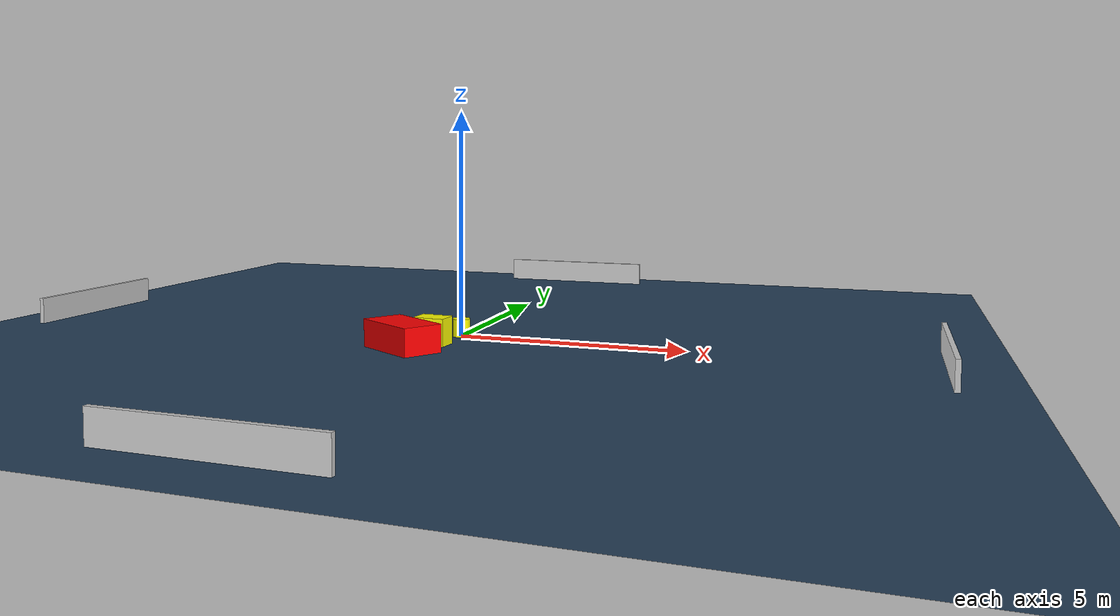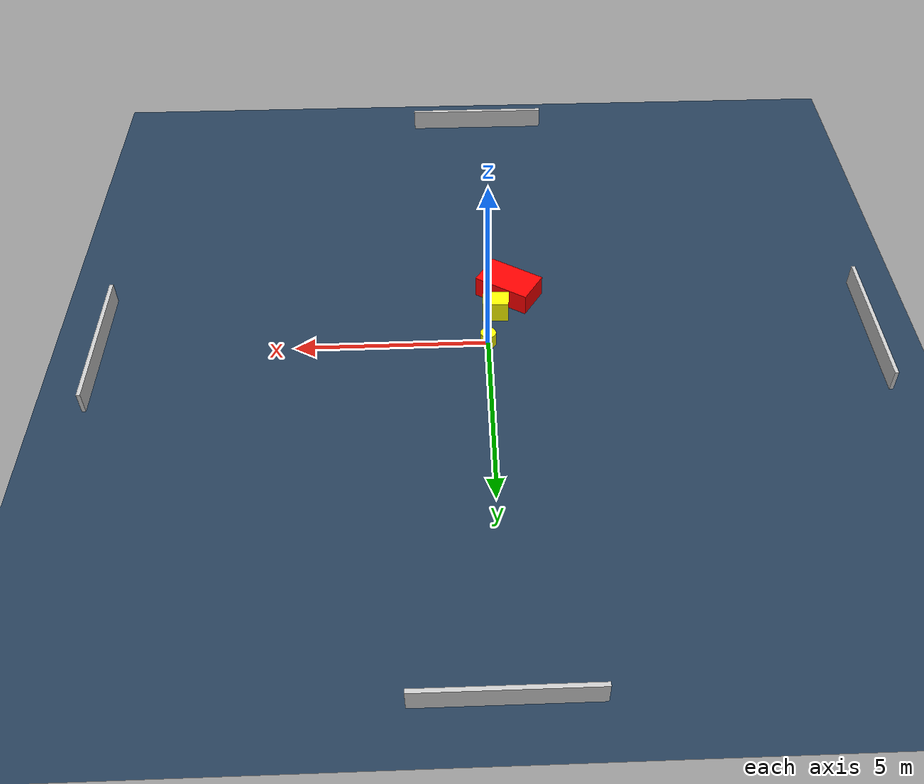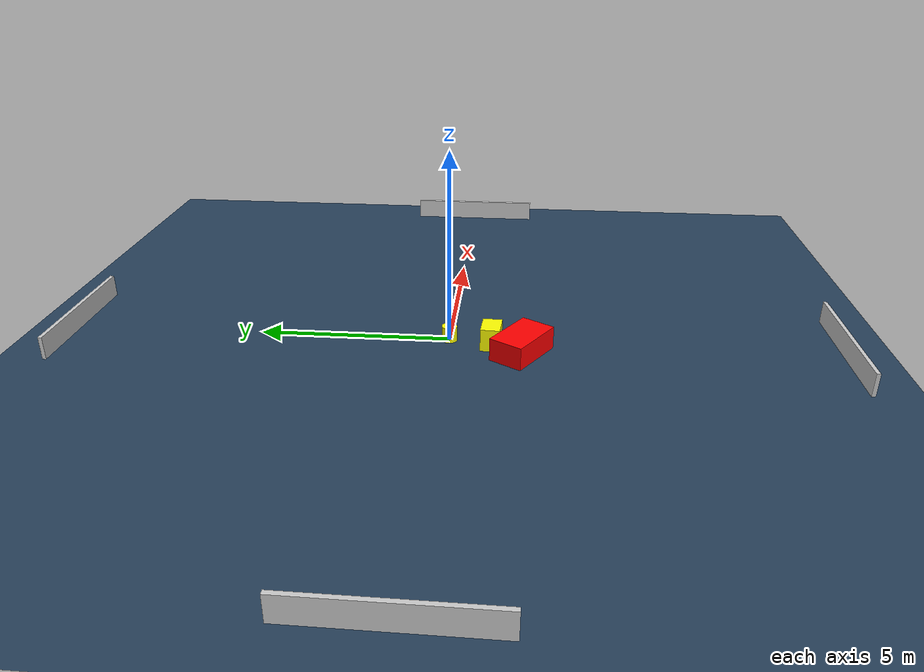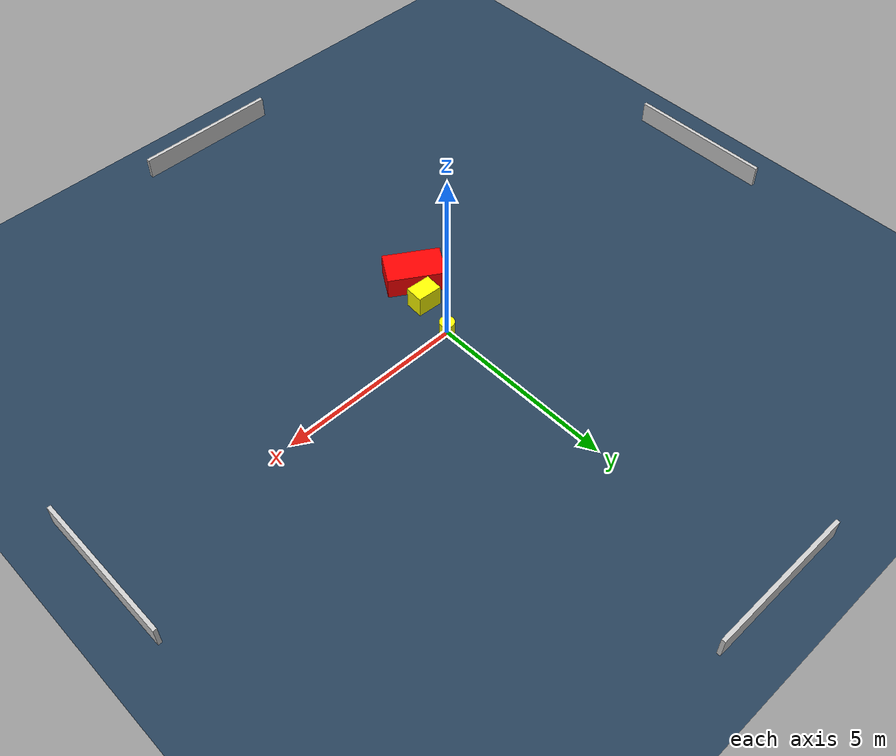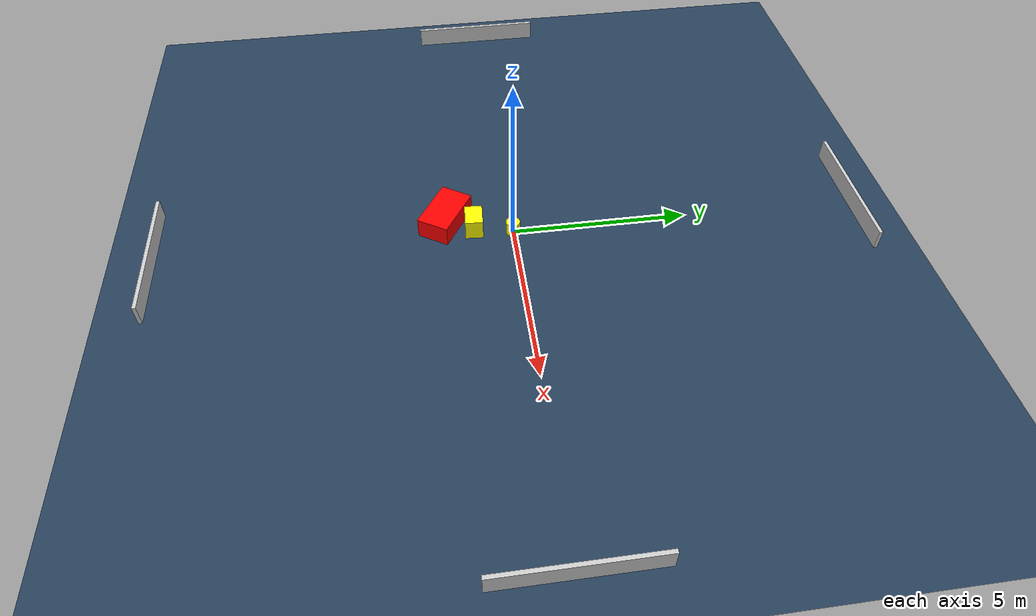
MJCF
<?xml version="1.0" ?>
<mujoco model="generated_environment">
  <option timestep="0.01" integrator="RK4" cone="elliptic"/>
  <default>
    <geom density="1"/>
  </default>
  <asset>
    <texture builtin="gradient" height="3072" name="skybox" rgb1="0.3 0.5 0.7" rgb2="0 0 0" type="skybox" width="512"/>
    <texture builtin="checker" height="300" name="groundplane" rgb1="0.2 0.3 0.4" rgb2="0.1 0.2 0.3" type="2d" width="300"/>
    <material name="groundplane" reflectance="0.2" texrepeat="5 5" texture="groundplane"/>
  </asset>
  <worldbody>
    <light dir="0 0 -1" directional="true" pos="0 0 1.5"/>
    <geom condim="3" friction="0.5 0.005 0.001" material="groundplane" name="floor" pos="0 0 0" size="0 0 0.05" type="plane"/>
    <body name="walls">
      <geom name="wall_1" condim="4" pos="-10.0 0.0 0.3" rgba="0.800000011920929 0.800000011920929 0.800000011920929 1.0" size="0.05 2.0 0.3" type="box"/>
      <geom name="wall_2" condim="4" pos="10.0 0.0 0.3" rgba="0.800000011920929 0.800000011920929 0.800000011920929 1.0" size="0.05 2.0 0.3" type="box"/>
      <geom name="wall_3" condim="4" pos="0.0 -10.0 0.3" rgba="0.800000011920929 0.800000011920929 0.800000011920929 1.0" size="2.0 0.05 0.3" type="box"/>
      <geom name="wall_4" condim="4" pos="0.0 10.0 0.3" rgba="0.800000011920929 0.800000011920929 0.800000011920929 1.0" size="2.0 0.05 0.3" type="box"/>
    </body>
    <body name="robot">
      <joint name="joint_x" type="slide" pos="0 0 0" axis="1 0 0"/>
      <joint name="joint_y" type="slide" pos="0 0 0" axis="0 1 0"/>
      <geom name="robot" type="cylinder" pos="0.0 0.0 0.2" size="0.2 0.2 0.0" mass="5.0" friction="1.0 0.005 0.0001" condim="4" rgba="1.0 1.0 0.0 1.0"/>
    </body>
    <body name="obstacle_1_movable">
      <geom name="obstacle_1_movable" condim="4" pos="-0.23774627273159882 -1.0927238448046184 0.3" euler="0 0 86.44462074635824" friction="0.0 0.005 0.001" rgba="1.0 1.0 0.0 1.0" size="0.24934263682170477 0.34001818506371984 0.3" type="box" mass="0.1"/>
      <joint type="free"/>
    </body>
    <body name="obstacle_2_static">
      <geom name="obstacle_2_static" condim="4" pos="-0.6216128860378566 -1.8798920650133164 0.3" euler="0 0 147.86536353660608" friction="0.0 0.005 0.001" rgba="1.0 0.0 0.0 1.0" size="0.7650773875344759 0.4622490745032619 0.3" type="box"/>
    </body>
  </worldbody>
  <actuator>
    <motor name="actuator_x" joint="joint_x" gear="1" ctrlrange="-1 1"/>
    <motor name="actuator_y" joint="joint_y" gear="1" ctrlrange="-1 1"/>
  </actuator>
</mujoco>
